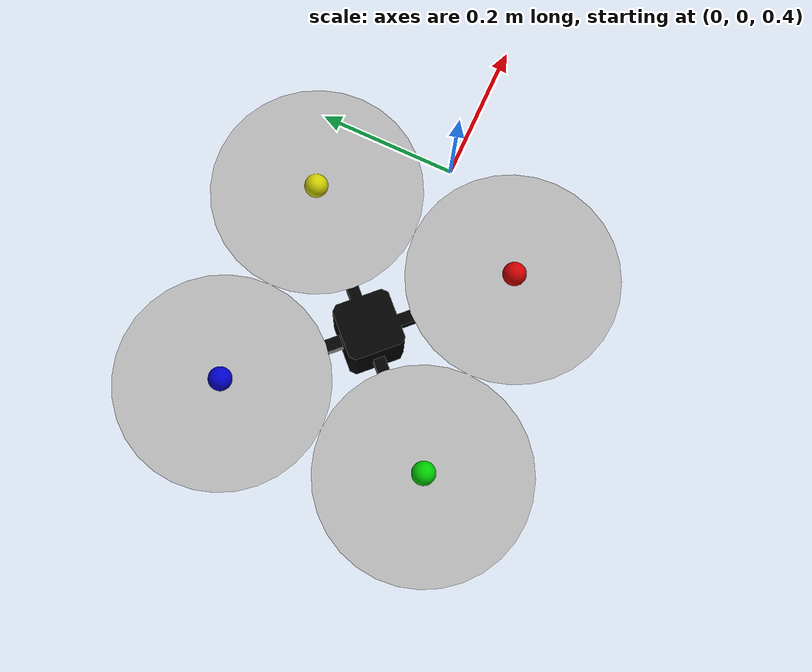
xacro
<?xml version="1.0"?>
<robot name="quadcopter" xmlns:xacro="http://www.ros.org/wiki/xacro">

  <!-- Quadcopter Description -->
  <link name="quad_link">
    <visual name="quad_blend">
      <origin xyz=" 0 0 0" rpy="0 0 0"/>
      <geometry>
	      <mesh filename="package://quad_sim/quadcopter/meshes/quad.dae"/>
      </geometry>
    </visual>
    <collision>
      <origin xyz="0 0 0" rpy="0 0 0"/>
      <geometry>
	      <mesh filename="package://quad_sim/quadcopter/meshes/quad.stl"/>
      </geometry>
    </collision>
    <inertial>
      <origin xyz="0 0 0" rpy="0 0 0"/>
      <mass value="0.4"/>
      <inertia ixx="0.0038278" ixy="0.0" ixz="0.0" iyy="0.0038278" iyz="0.0" izz="0.0071345"/>
    </inertial>
  </link>

</robot>
